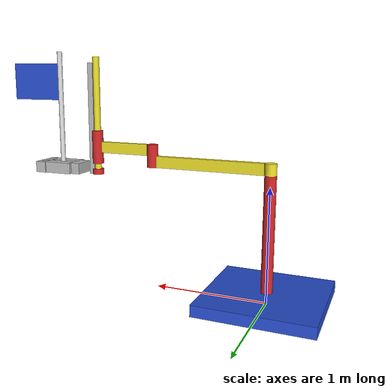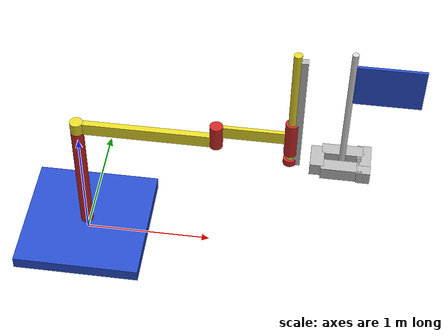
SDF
<?xml version="1.0" ?>
<sdf version="1.5">
  <model name="simple_arm_blue_flag">
    <include>
      <uri>model://simple_arm_gripper</uri>
    </include>

    <include>
      <uri>model://blue_flag</uri>
      <pose>1.98 0 1.05 0 0 0</pose>
    </include>

    <joint name="blue_flag_to_gripper" type="fixed">
      <parent>simple_arm_gripper::simple_gripper::palm</parent>
      <child>blue_flag::pole</child>
    </joint>
  </model>
</sdf>

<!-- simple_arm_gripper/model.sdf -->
<sdf version="1.5">
  <model name="simple_arm_gripper">
    <include><uri>model://simple_arm</uri></include>
    <include><uri>model://simple_gripper</uri><pose>1.8 0 1 0 0 0</pose></include>

    <joint name="fixed_to_world" type="fixed">
      <parent>world</parent>
      <child>simple_arm::arm_base</child>
    </joint>

    <joint name="arm_gripper_joint" type="revolute">
      <parent>simple_arm::arm_wrist_roll</parent>
      <child>simple_gripper::riser</child>
      <axis><limit><lower>0</lower><upper>0</upper></limit><xyz>0 0 1</xyz></axis>
    </joint>

    <plugin name="joint_trajectory_controller" filename="libgazebo_ros_joint_pose_trajectory.so">
      <ros><remapping>set_joint_trajectory:=joint_trajectory</remapping></ros>
      <update_rate>50</update_rate>
      <frame_id>world</frame_id>
      <has_pid>true</has_pid>
      <p>1000.0</p><i>10.0</i><d>100.0</d>
    </plugin>

    <plugin name="joint_state_publisher" filename="libgazebo_ros_joint_state_publisher.so">
      <ros><remapping>joint_states:=joint_states</remapping></ros>
      <update_rate>20</update_rate>
      <!-- 로봇이 가진 관절들을 명시 (네임스페이스와 상관없이 내부 이름 사용) -->
      <joint_name>simple_arm::arm_shoulder_pan_joint</joint_name>
      <joint_name>simple_arm::arm_elbow_pan_joint</joint_name>
      <joint_name>simple_arm::arm_wrist_lift_joint</joint_name>
      <joint_name>simple_arm::arm_wrist_roll_joint</joint_name>
      <joint_name>simple_gripper::palm_riser</joint_name>
    </plugin>
  </model>
</sdf>

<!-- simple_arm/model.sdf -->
<sdf version="1.5">
  <model name="simple_arm">
    <link name="arm_base">
      <gravity>0</gravity>
      <kinematic>0</kinematic>
      <inertial>
        <pose>0 0 0.00099 0 0 0</pose>
        <inertia>
          <ixx>1.11</ixx>
          <ixy>0</ixy>
          <ixz>0</ixz>
          <iyy>100.11</iyy>
          <iyz>0</iyz>
          <izz>1.01</izz>
        </inertia>
        <mass>101.0</mass>
      </inertial>
      <collision name="arm_base_geom">
        <pose>0 0 0.05 0 0 0</pose>
        <geometry>
          <box>
            <size>1.0 1.0 0.1</size>
          </box>
        </geometry>
      </collision>
      <visual name="arm_base_geom_visual">
        <pose>0 0 0.05 0 0 0</pose>
        <geometry>
          <box>
            <size>1.0 1.0 0.1</size>
          </box>
        </geometry>
        <material>
          <script>
            <uri>file://media/materials/scripts/gazebo.material</uri>
            <name>Gazebo/Blue</name>
          </script>
        </material>
      </visual>
      <collision name="arm_base_geom_arm_trunk">
        <pose>0 0 0.6 0 0 0</pose>
        <geometry>
          <cylinder>
            <radius>0.05</radius>
            <length>1.0</length>
          </cylinder>
        </geometry>
      </collision>
      <visual name="arm_base_geom_arm_trunk_visual">
        <pose>0 0 0.6 0 0 0</pose>
        <geometry>
          <cylinder>
            <radius>0.05</radius>
            <length>1.0</length>
          </cylinder>
        </geometry>
        <material>
          <script>
            <uri>file://media/materials/scripts/gazebo.material</uri>
            <name>Gazebo/Red</name>
          </script>
        </material>
      </visual>
    </link>
    <link name="arm_shoulder_pan">
      <gravity>0</gravity>
      <kinematic>0</kinematic>
      <pose>0 0 1.1 0 0 0</pose>
      <inertial>
        <pose>0.045455 0 0 0 0 0</pose>
        <inertia>
          <ixx>0.011</ixx>
          <ixy>0</ixy>
          <ixz>0</ixz>
          <iyy>0.0225</iyy>
          <iyz>0</iyz>
          <izz>0.0135</izz>
        </inertia>
        <mass>1.1</mass>
      </inertial>
      <collision name="arm_shoulder_pan_geom">
        <pose>0 0 0.05 0 0 0</pose>
        <geometry>
          <cylinder>
            <radius>0.05</radius>
            <length>0.1</length>
          </cylinder>
        </geometry>
      </collision>
      <visual name="arm_shoulder_pan_geom_visual">
        <pose>0 0 0.05 0 0 0</pose>
        <geometry>
          <cylinder>
            <radius>0.05</radius>
            <length>0.1</length>
          </cylinder>
        </geometry>
        <material>
          <script>
            <uri>file://media/materials/scripts/gazebo.material</uri>
            <name>Gazebo/Yellow</name>
          </script>
        </material>
      </visual>
      <collision name="arm_shoulder_pan_geom_arm_shoulder">
        <pose>0.55 0 0.05 0 0 0</pose>
        <geometry>
          <box>
            <size>1.0 0.05 0.1</size>
          </box>
        </geometry>
      </collision>
      <visual name="arm_shoulder_pan_geom_arm_shoulder_visual">
        <pose>0.55 0 0.05 0 0 0</pose>
        <geometry>
          <box>
            <size>1.0 0.05 0.1</size>
          </box>
        </geometry>
        <material>
          <script>
            <uri>file://media/materials/scripts/gazebo.material</uri>
            <name>Gazebo/Yellow</name>
          </script>
        </material>
      </visual>
    </link>
    <link name="arm_elbow_pan">
      <gravity>0</gravity>
      <kinematic>0</kinematic>
      <pose>1.05 0 1.1 0 0 0</pose>
      <inertial>
        <pose>0.0875 0 0.083333 0 0 0</pose>
        <inertia>
          <ixx>0.031</ixx>
          <ixy>0</ixy>
          <ixz>0.005</ixz>
          <iyy>0.07275</iyy>
          <iyz>0</iyz>
          <izz>0.04475</izz>
        </inertia>
        <mass>1.2</mass>
      </inertial>
      <collision name="arm_elbow_pan_geom">
        <pose>0 0 0.1 0 0 0</pose>
        <geometry>
          <cylinder>
            <radius>0.05</radius>
            <length>0.2</length>
          </cylinder>
        </geometry>
      </collision>
      <visual name="arm_elbow_pan_geom_visual">
        <pose>0 0 0.1 0 0 0</pose>
        <geometry>
          <cylinder>
            <radius>0.05</radius>
            <length>0.2</length>
          </cylinder>
        </geometry>
        <material>
          <script>
            <uri>file://media/materials/scripts/gazebo.material</uri>
            <name>Gazebo/Red</name>
          </script>
        </material>
      </visual>
      <collision name="arm_elbow_pan_geom_arm_elbow">
        <pose>0.3 0 0.15 0 0 0</pose>
        <geometry>
          <box>
            <size>0.5 0.03 0.1</size>
          </box>
        </geometry>
      </collision>
      <visual name="arm_elbow_pan_geom_arm_elbow_visual">
        <pose>0.3 0 0.15 0 0 0</pose>
        <geometry>
          <box>
            <size>0.5 0.03 0.1</size>
          </box>
        </geometry>
        <material>
          <script>
            <uri>file://media/materials/scripts/gazebo.material</uri>
            <name>Gazebo/Yellow</name>
          </script>
        </material>
      </visual>
      <collision name="arm_elbow_pan_geom_arm_wrist">
        <pose>0.55 0 0.15 0 0 0</pose>
        <geometry>
          <cylinder>
            <radius>0.05</radius>
            <length>0.3</length>
          </cylinder>
        </geometry>
      </collision>
      <visual name="arm_elbow_pan_geom_arm_wrist_visual">
        <pose>0.55 0 0.15 0 0 0</pose>
        <geometry>
          <cylinder>
            <radius>0.05</radius>
            <length>0.3</length>
          </cylinder>
        </geometry>
        <material>
          <script>
            <uri>file://media/materials/scripts/gazebo.material</uri>
            <name>Gazebo/Red</name>
          </script>
        </material>
      </visual>
    </link>
    <link name="arm_wrist_lift">
      <gravity>0</gravity>
      <kinematic>0</kinematic>
      <pose>1.6 0 1.05 0 0 0</pose>
      <inertial>
        <pose>0 0 0 0 0 0</pose>
        <inertia>
          <ixx>0.01</ixx>
          <ixy>0</ixy>
          <ixz>0</ixz>
          <iyy>0.01</iyy>
          <iyz>0</iyz>
          <izz>0.001</izz>
        </inertia>
        <mass>0.1</mass>
      </inertial>
      <collision name="arm_wrist_lift_geom">
        <pose>0 0 0.5 0 0 0</pose>
        <geometry>
          <cylinder>
            <radius>0.03</radius>
            <length>1.0</length>
          </cylinder>
        </geometry>
      </collision>
      <visual name="arm_wrist_lift_geom_visual">
        <pose>0 0 0.5 0 0 0</pose>
        <geometry>
          <cylinder>
            <radius>0.03</radius>
            <length>1.0</length>
          </cylinder>
        </geometry>
        <material>
          <script>
            <uri>file://media/materials/scripts/gazebo.material</uri>
            <name>Gazebo/Yellow</name>
          </script>
        </material>
      </visual>
    </link>
    <link name="arm_wrist_roll">
      <gravity>0</gravity>
      <kinematic>0</kinematic>
      <pose>1.6 0 1.0 0 0 0</pose>
      <inertial>
        <pose>0 0 0 0 0 0</pose>
        <inertia>
          <ixx>0.01</ixx>
          <ixy>0</ixy>
          <ixz>0</ixz>
          <iyy>0.01</iyy>
          <iyz>0</iyz>
          <izz>0.001</izz>
        </inertia>
        <mass>0.1</mass>
      </inertial>
      <collision name="arm_wrist_roll_geom">
        <pose>0 0 0.025 0 0 0</pose>
        <geometry>
          <cylinder>
            <radius>0.05</radius>
            <length>0.05</length>
          </cylinder>
        </geometry>
      </collision>
      <visual name="arm_wrist_roll_geom_visual">
        <pose>0 0 0.025 0 0 0</pose>
        <geometry>
          <cylinder>
            <radius>0.05</radius>
            <length>0.05</length>
          </cylinder>
        </geometry>
        <material>
          <script>
            <uri>file://media/materials/scripts/gazebo.material</uri>
            <name>Gazebo/Red</name>
          </script>
        </material>
      </visual>
    </link>
    <joint name="arm_shoulder_pan_joint" type="revolute">
      <parent>arm_base</parent>
      <child>arm_shoulder_pan</child>
      <axis>
        <dynamics>
          <damping>50.0</damping>
          <friction>5.0</friction>
          <friction>0.000000</friction>
        </dynamics>
        <xyz>0 0 1</xyz>
        <use_parent_model_frame>true</use_parent_model_frame>
      </axis>
    </joint>
    <joint name="arm_elbow_pan_joint" type="revolute">
      <parent>arm_shoulder_pan</parent>
      <child>arm_elbow_pan</child>
      <axis>
        <dynamics>
          <damping>50.0</damping>
          <friction>5.0</friction>
          <friction>0.000000</friction>
        </dynamics>
        <xyz>0 0 1</xyz>
        <use_parent_model_frame>true</use_parent_model_frame>
      </axis>
    </joint>
    <joint name="arm_wrist_lift_joint" type="prismatic">
      <parent>arm_elbow_pan</parent>
      <child>arm_wrist_lift</child>
      <axis>
        <dynamics>
          <damping>50.0</damping>
          <friction>5.0</friction>
          <friction>0.000000</friction>
        </dynamics>
        <limit>
          <lower>-0.8</lower>
          <upper>0.1</upper>
        </limit>
        <xyz>0 0 1</xyz>
        <use_parent_model_frame>true</use_parent_model_frame>
      </axis>
    </joint>
    <joint name="arm_wrist_roll_joint" type="revolute">
      <parent>arm_wrist_lift</parent>
      <child>arm_wrist_roll</child>
      <axis>
        <dynamics>
          <damping>50.0</damping>
          <friction>5.0</friction>
          <friction>0.000000</friction>
        </dynamics>
        <limit>
          <lower>-2.999994</lower>
          <upper>2.999994</upper>
        </limit>
        <xyz>0 0 1</xyz>
        <use_parent_model_frame>true</use_parent_model_frame>
      </axis>
    </joint>
  </model>
</sdf>

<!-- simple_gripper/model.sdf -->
<sdf version="1.5">
  <model name="simple_gripper">
    <link name="riser">
      <gravity>0</gravity>
      <kinematic>0</kinematic>
      <pose>-0.15 0.0 0.5 0 0 0</pose>
      <inertial>
        <mass>10</mass>
      </inertial>
      <collision name="collision">
        <geometry>
          <box>
            <size>0.05 0.05 1.0</size>
          </box>
        </geometry>
        <surface>
          <contact>
            <ode>
              <max_vel>0.0</max_vel>
            </ode>
          </contact>
        </surface>
      </collision>
      <visual name="visual">
        <geometry>
          <box>
            <size>0.05 0.05 1.0</size>
          </box>
        </geometry>
      </visual>
    </link>
    <link name="palm">
      <gravity>0</gravity>
      <kinematic>0</kinematic>
      <pose>0.0 0.0 0.05 0 0 0</pose>
      <inertial>
        <mass>0.5</mass>
      </inertial>
      <collision name="collision">
        <geometry>
          <box>
            <size>0.1 0.2 0.1</size>
          </box>
        </geometry>
        <surface>
          <contact>
            <ode>
              <max_vel>0.0</max_vel>
            </ode>
          </contact>
        </surface>
      </collision>
      <visual name="visual">
        <geometry>
          <box>
            <size>0.1 0.2 0.1</size>
          </box>
        </geometry>
      </visual>
    </link>
    <link name="left_finger">
      <gravity>0</gravity>
      <kinematic>0</kinematic>
      <pose>0.18 0.08 0.05 0 0 1.5707</pose>
      <inertial>
        <mass>0.1</mass>
      </inertial>
      <collision name="collision">
        <geometry>
          <box>
            <size>0.1 0.3 0.1</size>
          </box>
        </geometry>
        <surface>
          <friction>
            <ode>
              <mu>0.1</mu>
              <mu2>0</mu2>
            </ode>
          </friction>
          <contact>
            <ode>
              <max_vel>0.0</max_vel>
            </ode>
          </contact>
        </surface>
      </collision>
      <visual name="visual">
        <geometry>
          <box>
            <size>0.1 0.3 0.1</size>
          </box>
        </geometry>
      </visual>
    </link>
    <link name="left_finger_tip">
      <gravity>0</gravity>
      <kinematic>0</kinematic>
      <pose>0.34 0.04 0.05 0 0 0</pose>
      <inertial>
        <mass>0.5</mass>
      </inertial>
      <collision name="collision">
        <geometry>
          <box>
            <size>0.1 0.2 0.1</size>
          </box>
        </geometry>
        <surface>
          <friction>
            <ode>
              <mu>.1</mu>
              <mu2>0</mu2>
            </ode>
          </friction>
          <contact>
            <ode>
              <max_vel>0.0</max_vel>
            </ode>
          </contact>
        </surface>
      </collision>
      <visual name="visual">
        <geometry>
          <box>
            <size>0.1 0.2 0.1</size>
          </box>
        </geometry>
      </visual>
    </link>
    <link name="right_finger">
      <gravity>0</gravity>
      <kinematic>0</kinematic>
      <pose>0.18 -0.08 0.05 0 0 1.5707</pose>
      <inertial>
        <mass>0.1</mass>
      </inertial>
      <collision name="collision">
        <geometry>
          <box>
            <size>0.1 0.3 0.1</size>
          </box>
        </geometry>
        <surface>
          <friction>
            <ode>
              <mu>0.1</mu>
              <mu2>0</mu2>
            </ode>
          </friction>
          <contact>
            <ode>
              <max_vel>0.0</max_vel>
            </ode>
          </contact>
        </surface>
      </collision>
      <visual name="visual">
        <geometry>
          <box>
            <size>0.1 0.3 0.1</size>
          </box>
        </geometry>
      </visual>
    </link>
    <link name="right_finger_tip">
      <gravity>0</gravity>
      <kinematic>0</kinematic>
      <pose>0.34 -0.04 0.05 0 0 0</pose>
      <inertial>
        <mass>0.1</mass>
      </inertial>
      <collision name="collision">
        <geometry>
          <box>
            <size>0.1 0.2 0.1</size>
          </box>
        </geometry>
        <surface>
          <friction>
            <ode>
              <mu>0.1</mu>
              <mu2>0</mu2>
            </ode>
          </friction>
          <contact>
            <ode>
              <max_vel>0.0</max_vel>
            </ode>
          </contact>
        </surface>
      </collision>
      <visual name="visual">
        <geometry>
          <box>
            <size>0.1 0.2 0.1</size>
          </box>
        </geometry>
      </visual>
    </link>
    <joint name="palm_left_finger" type="revolute">
      <pose>0 -0.15 0 0 0 0</pose>
      <child>left_finger</child>
      <parent>palm</parent>
      <axis>
        <limit>
          <lower>0</lower>
          <upper>0</upper>
        </limit>
        <xyz>0 0 1</xyz>
        <use_parent_model_frame>true</use_parent_model_frame>
      </axis>
    </joint>
    <joint name="left_finger_tip_joint" type="revolute">
      <pose>0 0.1 0 0 0 0</pose>
      <child>left_finger_tip</child>
      <parent>left_finger</parent>
      <axis>
        <limit>
          <lower>0</lower>
          <upper>0</upper>
        </limit>
        <xyz>0 0 1</xyz>
        <use_parent_model_frame>true</use_parent_model_frame>
      </axis>
    </joint>
    <joint name="palm_right_finger" type="revolute">
      <pose>0 0.15 0 0 0 0</pose>
      <child>right_finger</child>
      <parent>palm</parent>
      <axis>
        <limit>
          <lower>0</lower>
          <upper>0</upper>
        </limit>
        <xyz>0 0 1</xyz>
        <use_parent_model_frame>true</use_parent_model_frame>
      </axis>
    </joint>
    <joint name="right_finger_tip_joint" type="revolute">
      <pose>0 0.1 0 0 0 0</pose>
      <child>right_finger_tip</child>
      <parent>right_finger</parent>
      <axis>
        <limit>
          <lower>0</lower>
          <upper>0</upper>
        </limit>
        <xyz>0 0 1</xyz>
        <use_parent_model_frame>true</use_parent_model_frame>
      </axis>
    </joint>
    <joint name="palm_riser" type="prismatic">
      <child>palm</child>
      <parent>riser</parent>
      <axis>
        <dynamics>
          <damping>50.0</damping>
          <friction>5.0</friction>
        </dynamics>
        <limit>
          <lower>0</lower>
          <upper>0.9</upper>
        </limit>
        <xyz>0 0 1</xyz>
        <use_parent_model_frame>true</use_parent_model_frame>
      </axis>
    </joint>
    <gripper name="simple_gripper">
      <grasp_check>
        <detach_steps>40</detach_steps>
        <attach_steps>20</attach_steps>
        <min_contact_count>2</min_contact_count>
      </grasp_check>
      <gripper_link>right_finger</gripper_link>
      <gripper_link>right_finger_tip</gripper_link>
      <gripper_link>left_finger</gripper_link>
      <gripper_link>left_finger_tip</gripper_link>
      <palm_link>palm</palm_link>
    </gripper>
  </model>
</sdf>

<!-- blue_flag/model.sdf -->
<sdf version="1.5">
  <model name="blue_flag">
    <static>false</static>

    <link name="pole">
      <gravity>0</gravity>
      <pose>0 0 0.525 0 0 0</pose>
      <inertial>
        <mass>0.075</mass>
        <inertia>
          <ixx>0.003</ixx>
          <ixy>0</ixy>
          <ixz>0</ixz>
          <iyy>0.003</iyy>
          <iyz>0</iyz>
          <izz>0.00001</izz>
        </inertia>
      </inertial>
      <collision name="pole_collision">
        <geometry>
          <cylinder>
            <radius>0.0225</radius>
            <length>1.05</length>
          </cylinder>
        </geometry>
      </collision>
      <visual name="pole_visual">
        <geometry>
          <cylinder>
            <radius>0.0225</radius>
            <length>1.05</length>
          </cylinder>
        </geometry>
        <material>
          <ambient>0.75 0.75 0.75 1</ambient>
          <diffuse>0.85 0.85 0.85 1</diffuse>
          <specular>0.2 0.2 0.2 1</specular>
        </material>
      </visual>
    </link>

    <link name="cloth">
      <gravity>0</gravity>
      <pose>0.255 0 0.78 0 0 0</pose>
      <inertial>
        <mass>0.03</mass>
        <inertia>
          <ixx>0.0001</ixx>
          <ixy>0</ixy>
          <ixz>0</ixz>
          <iyy>0.0003</iyy>
          <iyz>0</iyz>
          <izz>0.0003</izz>
        </inertia>
      </inertial>
      <collision name="cloth_collision">
        <geometry>
          <box>
            <size>0.48 0.0225 0.33</size>
          </box>
        </geometry>
      </collision>
      <visual name="cloth_visual">
        <geometry>
          <box>
            <size>0.48 0.0225 0.33</size>
          </box>
        </geometry>
        <material>
          <ambient>0.0 0.16 0.95 1</ambient>
          <diffuse>0.0 0.24 1.0 1</diffuse>
          <specular>0.1 0.1 0.2 1</specular>
          <script>
            <uri>file://media/materials/scripts/gazebo.material</uri>
            <name>Gazebo/Blue</name>
          </script>
        </material>
      </visual>
    </link>

    <joint name="cloth_to_pole" type="fixed">
      <parent>pole</parent>
      <child>cloth</child>
    </joint>
  </model>
</sdf>
